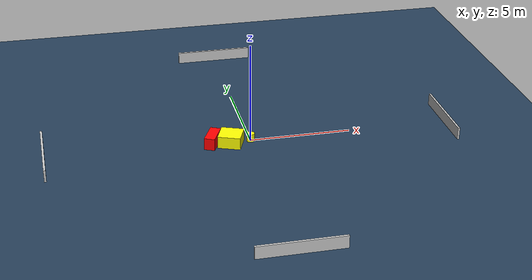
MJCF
<?xml version="1.0" ?>
<mujoco model="generated_environment">
  <option timestep="0.01" integrator="RK4" cone="elliptic"/>
  <default>
    <geom density="1"/>
  </default>
  <asset>
    <texture builtin="gradient" height="3072" name="skybox" rgb1="0.3 0.5 0.7" rgb2="0 0 0" type="skybox" width="512"/>
    <texture builtin="checker" height="300" name="groundplane" rgb1="0.2 0.3 0.4" rgb2="0.1 0.2 0.3" type="2d" width="300"/>
    <material name="groundplane" reflectance="0.2" texrepeat="5 5" texture="groundplane"/>
  </asset>
  <worldbody>
    <light dir="0 0 -1" directional="true" pos="0 0 1.5"/>
    <geom condim="3" friction="0.5 0.005 0.001" material="groundplane" name="floor" pos="0 0 0" size="0 0 0.05" type="plane"/>
    <body name="walls">
      <geom name="wall_1" condim="4" pos="-10.0 0.0 0.3" rgba="0.800000011920929 0.800000011920929 0.800000011920929 1.0" size="0.05 2.0 0.3" type="box"/>
      <geom name="wall_2" condim="4" pos="10.0 0.0 0.3" rgba="0.800000011920929 0.800000011920929 0.800000011920929 1.0" size="0.05 2.0 0.3" type="box"/>
      <geom name="wall_3" condim="4" pos="0.0 -10.0 0.3" rgba="0.800000011920929 0.800000011920929 0.800000011920929 1.0" size="2.0 0.05 0.3" type="box"/>
      <geom name="wall_4" condim="4" pos="0.0 10.0 0.3" rgba="0.800000011920929 0.800000011920929 0.800000011920929 1.0" size="2.0 0.05 0.3" type="box"/>
    </body>
    <body name="robot">
      <joint name="joint_x" type="slide" pos="0 0 0" axis="1 0 0"/>
      <joint name="joint_y" type="slide" pos="0 0 0" axis="0 1 0"/>
      <geom name="robot" type="cylinder" pos="0.0 0.0 0.2" size="0.2 0.2 0.0" mass="5.0" friction="1.0 0.005 0.0001" condim="4" rgba="1.0 1.0 0.0 1.0"/>
    </body>
    <body name="obstacle_1_movable">
      <geom name="obstacle_1_movable" condim="4" pos="-1.0028917842492977 -0.1426352358232708 0.3" euler="0 0 338.56891830459807" friction="0.0 0.005 0.001" rgba="1.0 1.0 0.0 1.0" size="0.5575556754178331 0.533554888053044 0.3" type="box" mass="0.1"/>
      <joint type="free"/>
    </body>
    <body name="obstacle_2_static">
      <geom name="obstacle_2_static" condim="4" pos="-1.877703794526883 -0.0099731735702979 0.3" euler="0 0 155.01224712168792" friction="0.0 0.005 0.001" rgba="1.0 0.0 0.0 1.0" size="0.2609981494646051 0.6096119790543291 0.3" type="box"/>
    </body>
  </worldbody>
  <actuator>
    <motor name="actuator_x" joint="joint_x" gear="1" ctrlrange="-1 1"/>
    <motor name="actuator_y" joint="joint_y" gear="1" ctrlrange="-1 1"/>
  </actuator>
</mujoco>
